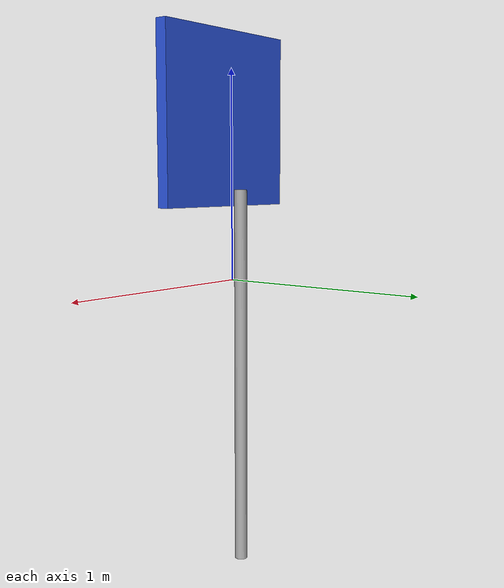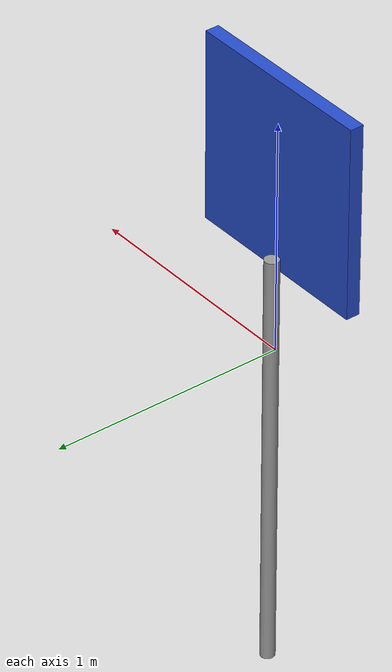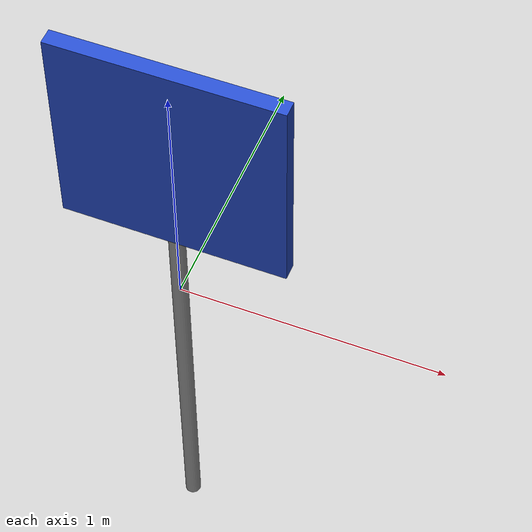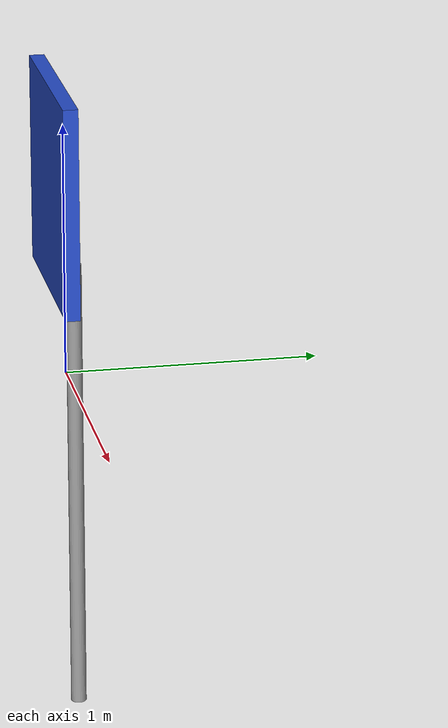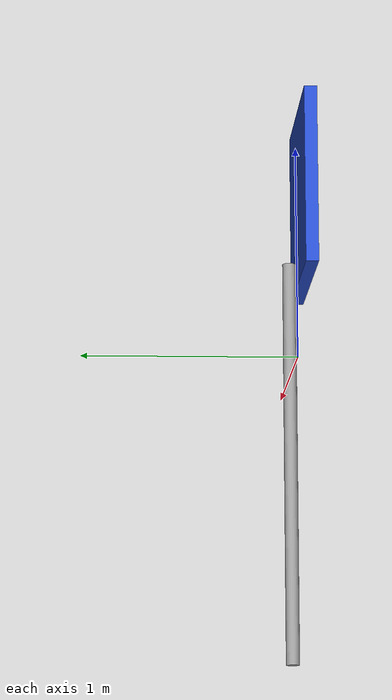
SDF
<?xml version='1.0'?>
<sdf version='1.7'>
  <model name='trafic_sign_ped'>
    <link name='link_0'>
      <inertial>
        <mass>0.0069833</mass>
        <inertia>
          <ixx>0.00199367</ixx>
          <ixy>0</ixy>
          <ixz>0</ixz>
          <iyy>0.00199367</iyy>
          <iyz>0</iyz>
          <izz>3.29471e-06</izz>
        </inertia>
        <pose>0 0 0 0 -0 0</pose>
      </inertial>
      <pose>-0.018801 0.037463 -0.490119 0 -0 0</pose>
      <self_collide>0</self_collide>
      <enable_wind>0</enable_wind>
      <kinematic>0</kinematic>
      <visual name='visual'>
        <pose>0 0 0 0 -0 0</pose>
        <geometry>
          <cylinder>
            <radius>0.0307185</radius>
            <length>1.85015</length>
          </cylinder>
        </geometry>
        <material>
          <lighting>1</lighting>
          <script>
            <uri>file://media/materials/scripts/gazebo.material</uri>
            <name>Gazebo/Grey</name>
          </script>
          <shader type='pixel'/>
        </material>
        <transparency>0</transparency>
        <cast_shadows>1</cast_shadows>
      </visual>
      <collision name='collision'>
        <laser_retro>0</laser_retro>
        <max_contacts>10</max_contacts>
        <pose>0 0 0 0 -0 0</pose>
        <geometry>
          <cylinder>
            <radius>0.030718</radius>
            <length>1.85015</length>
          </cylinder>
        </geometry>
        <surface>
          <friction>
            <ode>
              <mu>1</mu>
              <mu2>1</mu2>
              <fdir1>0 0 0</fdir1>
              <slip1>0</slip1>
              <slip2>0</slip2>
            </ode>
            <torsional>
              <coefficient>1</coefficient>
              <patch_radius>0</patch_radius>
              <surface_radius>0</surface_radius>
              <use_patch_radius>1</use_patch_radius>
              <ode>
                <slip>0</slip>
              </ode>
            </torsional>
          </friction>
          <bounce>
            <restitution_coefficient>0</restitution_coefficient>
            <threshold>1e+06</threshold>
          </bounce>
          <contact>
            <collide_without_contact>0</collide_without_contact>
            <collide_without_contact_bitmask>1</collide_without_contact_bitmask>
            <collide_bitmask>1</collide_bitmask>
            <ode>
              <soft_cfm>0</soft_cfm>
              <soft_erp>0.2</soft_erp>
              <kp>1e+13</kp>
              <kd>1</kd>
              <max_vel>0.01</max_vel>
              <min_depth>0</min_depth>
            </ode>
            <bullet>
              <split_impulse>1</split_impulse>
              <split_impulse_penetration_threshold>-0.01</split_impulse_penetration_threshold>
              <soft_cfm>0</soft_cfm>
              <soft_erp>0.2</soft_erp>
              <kp>1e+13</kp>
              <kd>1</kd>
            </bullet>
          </contact>
        </surface>
      </collision>
    </link>
    <link name='link_1'>
      <inertial>
        <mass>0.0398223</mass>
        <inertia>
          <ixx>0.00224834</ixx>
          <ixy>0</ixy>
          <ixz>0</ixz>
          <iyy>0.00452452</iyy>
          <iyz>0</iyz>
          <izz>0.00229886</izz>
        </inertia>
        <pose>0 0 0 0 -0 0</pose>
      </inertial>
      <pose>0.018801 -0.037463 0.76703 0 -0 0</pose>
      <gravity>1</gravity>
      <self_collide>0</self_collide>
      <kinematic>0</kinematic>
      <enable_wind>0</enable_wind>
      <visual name='ModelPreview_0::link_1::visual_1'>
        <pose>0 0 0 0 -0 0</pose>
        <geometry>
          <box>
            <size>0.830252 0.05845 0.821033</size>
          </box>
        </geometry>
        <material>
          <lighting>1</lighting>
          <script>
            <uri>file://media/materials/scripts/gazebo.material</uri>
            <name>Gazebo/Blue</name>
          </script>
          <shader type='pixel'>
            <normal_map>__default__</normal_map>
          </shader>
          <ambient>0 0 1 0</ambient>
          <diffuse>0 0 1 0</diffuse>
          <specular>0 0 1 0</specular>
          <emissive>0 0 1 0</emissive>
        </material>
        <transparency>0</transparency>
        <cast_shadows>1</cast_shadows>
      </visual>
      <visual name='ModelPreview_0::link_1::visual_2'>
        <pose>0 0 0 0 -0 0</pose>
        <geometry>
          <box>
            <size>0.830252 0.05845 0.821033</size>
          </box>
        </geometry>
        <material>
          <lighting>1</lighting>
          <script>
            <uri>file://media/materials/scripts/gazebo.material</uri>
            <name>Gazebo/Blue</name>
          </script>
          <shader type='pixel'>
            <normal_map>__default__</normal_map>
          </shader>
          <ambient>0 0 1 0</ambient>
          <diffuse>0 0 1 0</diffuse>
          <specular>0 0 1 0</specular>
          <emissive>0 0 1 0</emissive>
        </material>
        <transparency>0</transparency>
        <cast_shadows>1</cast_shadows>
      </visual>
      <collision name='collision'>
        <laser_retro>0</laser_retro>
        <max_contacts>10</max_contacts>
        <pose>0 0 0 0 -0 0</pose>
        <geometry>
          <box>
            <size>0.830252 0.05845 0.821033</size>
          </box>
        </geometry>
        <surface>
          <friction>
            <ode>
              <mu>1</mu>
              <mu2>1</mu2>
              <fdir1>0 0 0</fdir1>
              <slip1>0</slip1>
              <slip2>0</slip2>
            </ode>
            <torsional>
              <coefficient>1</coefficient>
              <patch_radius>0</patch_radius>
              <surface_radius>0</surface_radius>
              <use_patch_radius>1</use_patch_radius>
              <ode>
                <slip>0</slip>
              </ode>
            </torsional>
          </friction>
          <bounce>
            <restitution_coefficient>0</restitution_coefficient>
            <threshold>1e+06</threshold>
          </bounce>
          <contact>
            <collide_without_contact>0</collide_without_contact>
            <collide_without_contact_bitmask>1</collide_without_contact_bitmask>
            <collide_bitmask>1</collide_bitmask>
            <ode>
              <soft_cfm>0</soft_cfm>
              <soft_erp>0.2</soft_erp>
              <kp>1e+13</kp>
              <kd>1</kd>
              <max_vel>0.01</max_vel>
              <min_depth>0</min_depth>
            </ode>
            <bullet>
              <split_impulse>1</split_impulse>
              <split_impulse_penetration_threshold>-0.01</split_impulse_penetration_threshold>
              <soft_cfm>0</soft_cfm>
              <soft_erp>0.2</soft_erp>
              <kp>1e+13</kp>
              <kd>1</kd>
            </bullet>
          </contact>
        </surface>
      </collision>
    </link>
    <static>1</static>
    <allow_auto_disable>1</allow_auto_disable>
  </model>
</sdf>
